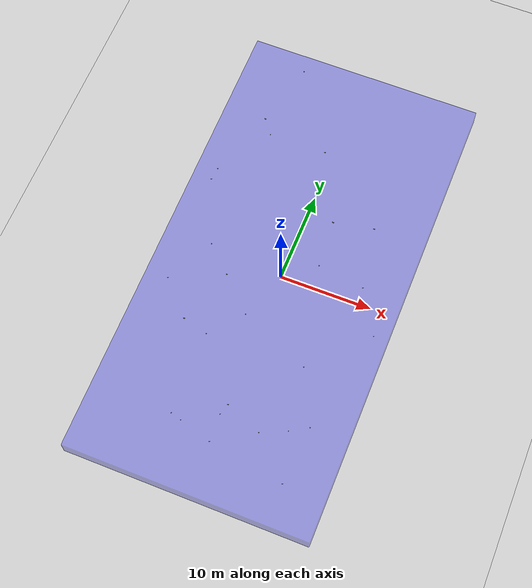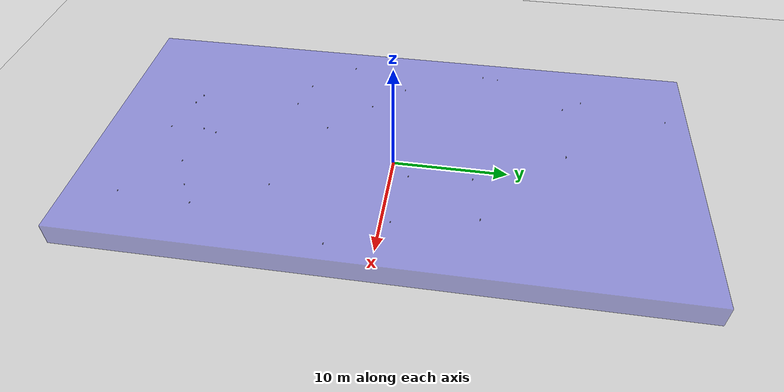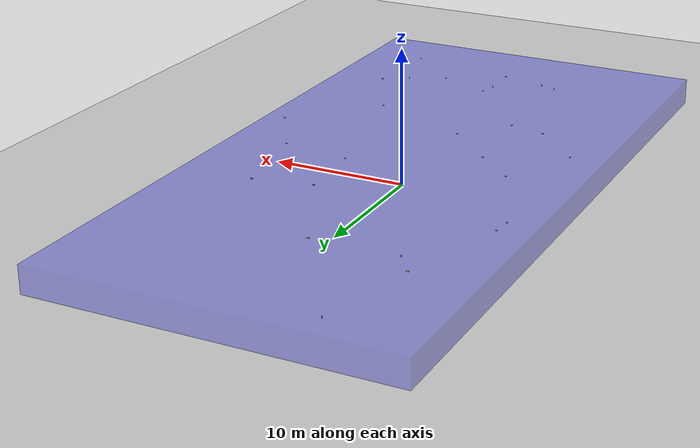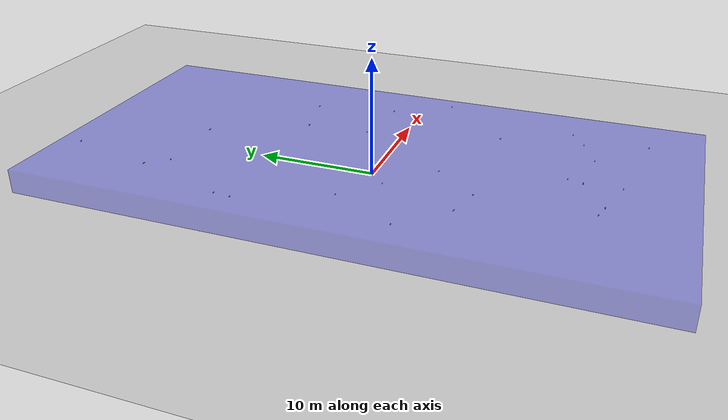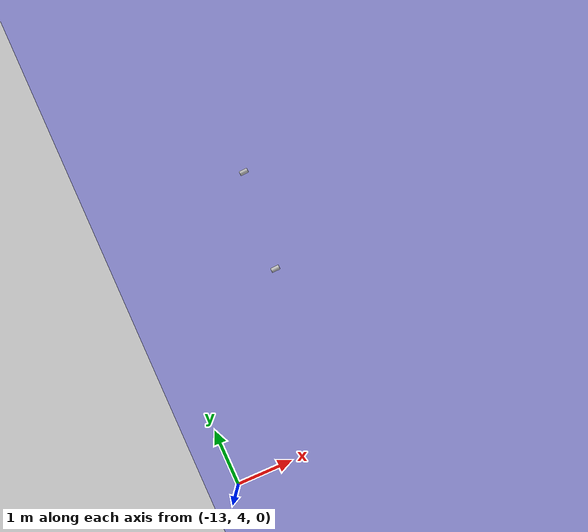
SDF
<sdf version="1.7">
 <world name="default">
  <light name="sun" type="directional">
   <pose>0 0 10 0 -0 0</pose>
   <diffuse>0.8 0.8 0.8 1</diffuse>
   <specular>0.2 0.2 0.2 1</specular>
   <attenuation>
    <range>1000</range>
    <constant>0.9</constant>
    <linear>0.01</linear>
    <quadratic>0.001</quadratic>
   </attenuation>
   <direction>-0.5 0.1 -0.9</direction>
   <spot><inner_angle>0</inner_angle><outer_angle>0</outer_angle><falloff>0</falloff></spot>
  </light>
  <model name="ground_plane">
   <static>1</static>
   <link name="link">
    <collision name="collision">
     <geometry><plane><normal>0 0 1</normal><size>200 200</size></plane></geometry>
     <surface>
      <contact><collide_bitmask>65535</collide_bitmask></contact>
      <friction><ode><mu>100</mu><mu2>50</mu2></ode></friction>
     </surface>
    </collision>
    <visual name="visual">
     <cast_shadows>0</cast_shadows>
     <geometry><plane><normal>0 0 1</normal><size>200 200</size></plane></geometry>
     <material>
      <script><uri>file://media/materials/scripts/gazebo.material</uri><name>Gazebo/Grey</name></script>
     </material>
    </visual>
   </link>
  </model>
  <model name="water">
   <static>1</static>
   <pose>0 0 1.02 3.1415 -0 3.1415</pose>
   <link name="link">
    <visual name="visual">
     <transparency>0.6</transparency>
     <cast_shadows>0</cast_shadows>
     <geometry><box><size>26 51 2</size></box></geometry>
     <material>
      <ambient>0.2 0.2 0.9 1</ambient>
      <diffuse>0.2 0.2 0.9 1</diffuse>
      <specular>0.1 0.1 0.3 1</specular>
      <emissive>0 0 0 1</emissive>
     </material>
    </visual>
    <collision name="collision">
     <geometry><box><size>26 51 2</size></box></geometry>
     <surface>
      <contact><ode><kp>100000</kp><kd>100</kd></ode></contact>
      <buoyancy><water_density>1000</water_density></buoyancy>
     </surface>
    </collision>
   </link>
  </model>
  <physics type="ode">
   <max_step_size>0.001</max_step_size>
   <real_time_update_rate>1000</real_time_update_rate>
   <real_time_factor>1</real_time_factor>
  </physics>
  <gravity>0 0 -9.8</gravity>
  <magnetic_field>6e-06 2.3e-05 -4.2e-05</magnetic_field>
  <atmosphere type="adiabatic"/>
  <scene><ambient>0.4 0.4 0.4 1</ambient><background>0.7 0.7 0.7 1</background><shadows>1</shadows></scene>
  <spherical_coordinates>
   <surface_model>EARTH_WGS84</surface_model>
   <latitude_deg>0</latitude_deg>
   <longitude_deg>0</longitude_deg>
   <elevation>0</elevation>
   <heading_deg>0</heading_deg>
  </spherical_coordinates>
  <model name="water_bottle_clone">
   <static>0</static>
   <link name="link">
    <collision name="collision">
     <geometry><cylinder><radius>0.035</radius><length>0.2</length></cylinder></geometry>
    </collision>
    <visual name="visual">
     <geometry><cylinder><radius>0.035</radius><length>0.2</length></cylinder></geometry>
     <material>
      <script>
       <uri>model://debris/water_bottle/materials/scripts</uri>
       <uri>model://debris/water_bottle/materials/textures</uri>
       <name>Debris/WaterBottle</name>
      </script>
     </material>
    </visual>
    <inertial>
     <mass>0.3</mass>
     <inertia><ixx>0.001</ixx><ixy>0</ixy><ixz>0</ixz><iyy>0.001</iyy><iyz>0</iyz><izz>0.001</izz></inertia>
    </inertial>
   </link>
   <pose>-7.12331 -8.83357 2.05417 1.57079 -0.849251 -1.64135</pose>
  </model>
  <model name="water_bottle_clone_0">
   <static>0</static>
   <link name="link">
    <collision name="collision">
     <geometry><cylinder><radius>0.035</radius><length>0.2</length></cylinder></geometry>
    </collision>
    <visual name="visual">
     <geometry><cylinder><radius>0.035</radius><length>0.2</length></cylinder></geometry>
     <material>
      <script>
       <uri>model://debris/water_bottle/materials/scripts</uri>
       <uri>model://debris/water_bottle/materials/textures</uri>
       <name>Debris/WaterBottle</name>
      </script>
     </material>
    </visual>
    <inertial>
     <mass>0.3</mass>
     <inertia><ixx>0.001</ixx><ixy>0</ixy><ixz>0</ixz><iyy>0.001</iyy><iyz>0</iyz><izz>0.001</izz></inertia>
    </inertial>
   </link>
   <pose>-8.2879 16.2115 2.05649 1.57079 -0.815715 -1.65596</pose>
  </model>
  <model name="water_bottle_clone_1">
   <static>0</static>
   <link name="link">
    <collision name="collision">
     <geometry><cylinder><radius>0.035</radius><length>0.2</length></cylinder></geometry>
    </collision>
    <visual name="visual">
     <geometry><cylinder><radius>0.035</radius><length>0.2</length></cylinder></geometry>
     <material>
      <script>
       <uri>model://debris/water_bottle/materials/scripts</uri>
       <uri>model://debris/water_bottle/materials/textures</uri>
       <name>Debris/WaterBottle</name>
      </script>
     </material>
    </visual>
    <inertial>
     <mass>0.3</mass>
     <inertia><ixx>0.001</ixx><ixy>0</ixy><ixz>0</ixz><iyy>0.001</iyy><iyz>0</iyz><izz>0.001</izz></inertia>
    </inertial>
   </link>
   <pose>7.44282 7.86851 2.05571 1.57078 -0.995325 -1.64201</pose>
  </model>
  <model name="pepsi_can_clone">
   <static>0</static>
   <link name="link">
    <collision name="collision">
     <geometry><cylinder><radius>0.033</radius><length>0.12</length></cylinder></geometry>
    </collision>
    <visual name="visual">
     <geometry><cylinder><radius>0.033</radius><length>0.12</length></cylinder></geometry>
     <material>
      <script>
       <uri>model://debris/pepsi_can/materials/scripts</uri>
       <uri>model://debris/pepsi_can/materials/textures</uri>
       <name>Debris/Pepsi</name>
      </script>
     </material>
    </visual>
    <inertial>
     <mass>0.3</mass>
     <inertia><ixx>0.001</ixx><ixy>0</ixy><ixz>0</ixz><iyy>0.001</iyy><iyz>0</iyz><izz>0.001</izz></inertia>
    </inertial>
   </link>
   <pose>-10.7283 8.51303 2.05377 1.57079 1.22067 1.61175</pose>
  </model>
  <model name="pepsi_can_clone_0">
   <static>0</static>
   <link name="link">
    <collision name="collision">
     <geometry><cylinder><radius>0.033</radius><length>0.12</length></cylinder></geometry>
    </collision>
    <visual name="visual">
     <geometry><cylinder><radius>0.033</radius><length>0.12</length></cylinder></geometry>
     <material>
      <script>
       <uri>model://debris/pepsi_can/materials/scripts</uri>
       <uri>model://debris/pepsi_can/materials/textures</uri>
       <name>Debris/Pepsi</name>
      </script>
     </material>
    </visual>
    <inertial>
     <mass>0.3</mass>
     <inertia><ixx>0.001</ixx><ixy>0</ixy><ixz>0</ixz><iyy>0.001</iyy><iyz>0</iyz><izz>0.001</izz></inertia>
    </inertial>
   </link>
   <pose>-10.8699 7.09847 2.05364 1.57078 1.24443 1.61177</pose>
  </model>
  <model name="pepsi_can_clone_1">
   <static>0</static>
   <link name="link">
    <collision name="collision">
     <geometry><cylinder><radius>0.033</radius><length>0.12</length></cylinder></geometry>
    </collision>
    <visual name="visual">
     <geometry><cylinder><radius>0.033</radius><length>0.12</length></cylinder></geometry>
     <material>
      <script>
       <uri>model://debris/pepsi_can/materials/scripts</uri>
       <uri>model://debris/pepsi_can/materials/textures</uri>
       <name>Debris/Pepsi</name>
      </script>
     </material>
    </visual>
    <inertial>
     <mass>0.3</mass>
     <inertia><ixx>0.001</ixx><ixy>0</ixy><ixz>0</ixz><iyy>0.001</iyy><iyz>0</iyz><izz>0.001</izz></inertia>
    </inertial>
   </link>
   <pose>-10.5257 -5.26918 2.0525 1.57078 1.27485 1.61177</pose>
  </model>
  <model name="pepsi_can_clone_2">
   <static>0</static>
   <link name="link">
    <collision name="collision">
     <geometry><cylinder><radius>0.033</radius><length>0.12</length></cylinder></geometry>
    </collision>
    <visual name="visual">
     <geometry><cylinder><radius>0.033</radius><length>0.12</length></cylinder></geometry>
     <material>
      <script>
       <uri>model://debris/pepsi_can/materials/scripts</uri>
       <uri>model://debris/pepsi_can/materials/textures</uri>
       <name>Debris/Pepsi</name>
      </script>
     </material>
    </visual>
    <inertial>
     <mass>0.3</mass>
     <inertia><ixx>0.001</ixx><ixy>0</ixy><ixz>0</ixz><iyy>0.001</iyy><iyz>0</iyz><izz>0.001</izz></inertia>
    </inertial>
   </link>
   <pose>-7.83719 -0.026124 2.05298 1.57078 1.27784 1.61178</pose>
  </model>
  <model name="coca_cola_can_clone">
   <static>0</static>
   <link name="link">
    <collision name="collision">
     <geometry><cylinder><radius>0.033</radius><length>0.12</length></cylinder></geometry>
    </collision>
    <visual name="visual">
     <geometry><cylinder><radius>0.033</radius><length>0.12</length></cylinder></geometry>
     <material>
      <script>
       <uri>model://debris/coca_cola_can/materials/scripts</uri>
       <uri>model://debris/coca_cola_can/materials/textures</uri>
       <name>Debris/CocaCola</name>
      </script>
     </material>
    </visual>
    <inertial>
     <mass>0.3</mass>
     <inertia><ixx>0.001</ixx><ixy>0</ixy><ixz>0</ixz><iyy>0.001</iyy><iyz>0</iyz><izz>0.001</izz></inertia>
    </inertial>
   </link>
   <pose>8.65227 1.05978 2.05308 1.5708 0.492515 1.56347</pose>
  </model>
  <model name="coca_cola_can_clone_0">
   <static>0</static>
   <link name="link">
    <collision name="collision">
     <geometry><cylinder><radius>0.033</radius><length>0.12</length></cylinder></geometry>
    </collision>
    <visual name="visual">
     <geometry><cylinder><radius>0.033</radius><length>0.12</length></cylinder></geometry>
     <material>
      <script>
       <uri>model://debris/coca_cola_can/materials/scripts</uri>
       <uri>model://debris/coca_cola_can/materials/textures</uri>
       <name>Debris/CocaCola</name>
      </script>
     </material>
    </visual>
    <inertial>
     <mass>0.3</mass>
     <inertia><ixx>0.001</ixx><ixy>0</ixy><ixz>0</ixz><iyy>0.001</iyy><iyz>0</iyz><izz>0.001</izz></inertia>
    </inertial>
   </link>
   <pose>6.10087 -9.28699 2.05213 1.5708 -0.072868 1.57</pose>
  </model>
  <model name="mirinda_can_clone">
   <static>0</static>
   <link name="link">
    <collision name="collision">
     <geometry><cylinder><radius>0.033</radius><length>0.12</length></cylinder></geometry>
    </collision>
    <visual name="visual">
     <geometry><cylinder><radius>0.033</radius><length>0.12</length></cylinder></geometry>
     <material>
      <script>
       <uri>model://debris/mirinda_can/materials/scripts</uri>
       <uri>model://debris/mirinda_can/materials/textures</uri>
       <name>Debris/Mirinda</name>
      </script>
     </material>
    </visual>
    <inertial>
     <mass>0.3</mass>
     <inertia><ixx>0.001</ixx><ixy>0</ixy><ixz>0</ixz><iyy>0.001</iyy><iyz>0</iyz><izz>0.001</izz></inertia>
    </inertial>
   </link>
   <pose>-3.13169 -18.8978 2.07825 -4.3e-05 0.000143 -2.06371</pose>
  </model>
  <model name="mirinda_can_clone_0">
   <static>0</static>
   <link name="link">
    <collision name="collision">
     <geometry><cylinder><radius>0.033</radius><length>0.12</length></cylinder></geometry>
    </collision>
    <visual name="visual">
     <geometry><cylinder><radius>0.033</radius><length>0.12</length></cylinder></geometry>
     <material>
      <script>
       <uri>model://debris/mirinda_can/materials/scripts</uri>
       <uri>model://debris/mirinda_can/materials/textures</uri>
       <name>Debris/Mirinda</name>
      </script>
     </material>
    </visual>
    <inertial>
     <mass>0.3</mass>
     <inertia><ixx>0.001</ixx><ixy>0</ixy><ixz>0</ixz><iyy>0.001</iyy><iyz>0</iyz><izz>0.001</izz></inertia>
    </inertial>
   </link>
   <pose>7.14858 -16.0655 2.07851 -1.4e-05 5.7e-05 -2.46805</pose>
  </model>
  <model name="coca_cola_can_clone_1">
   <static>0</static>
   <link name="link">
    <collision name="collision">
     <geometry><cylinder><radius>0.033</radius><length>0.12</length></cylinder></geometry>
    </collision>
    <visual name="visual">
     <geometry><cylinder><radius>0.033</radius><length>0.12</length></cylinder></geometry>
     <material>
      <script>
       <uri>model://debris/coca_cola_can/materials/scripts</uri>
       <uri>model://debris/coca_cola_can/materials/textures</uri>
       <name>Debris/CocaCola</name>
      </script>
     </material>
    </visual>
    <inertial>
     <mass>0.3</mass>
     <inertia><ixx>0.001</ixx><ixy>0</ixy><ixz>0</ixz><iyy>0.001</iyy><iyz>0</iyz><izz>0.001</izz></inertia>
    </inertial>
   </link>
   <pose>0.579845 -15.7056 2.05153 -1.5708 -1.20095 -1.57534</pose>
  </model>
  <model name="coca_cola_can_clone_2">
   <static>0</static>
   <link name="link">
    <collision name="collision">
     <geometry><cylinder><radius>0.033</radius><length>0.12</length></cylinder></geometry>
    </collision>
    <visual name="visual">
     <geometry><cylinder><radius>0.033</radius><length>0.12</length></cylinder></geometry>
     <material>
      <script>
       <uri>model://debris/coca_cola_can/materials/scripts</uri>
       <uri>model://debris/coca_cola_can/materials/textures</uri>
       <name>Debris/CocaCola</name>
      </script>
     </material>
    </visual>
    <inertial>
     <mass>0.3</mass>
     <inertia><ixx>0.001</ixx><ixy>0</ixy><ixz>0</ixz><iyy>0.001</iyy><iyz>0</iyz><izz>0.001</izz></inertia>
    </inertial>
   </link>
   <pose>4.48135 -17.273 2.05138 -1.5708 -1.08156 -1.57472</pose>
  </model>
  <model name="water_bottle_clone_2">
   <static>0</static>
   <link name="link">
    <collision name="collision">
     <geometry><cylinder><radius>0.035</radius><length>0.2</length></cylinder></geometry>
    </collision>
    <visual name="visual">
     <geometry><cylinder><radius>0.035</radius><length>0.2</length></cylinder></geometry>
     <material>
      <script>
       <uri>model://debris/water_bottle/materials/scripts</uri>
       <uri>model://debris/water_bottle/materials/textures</uri>
       <name>Debris/WaterBottle</name>
      </script>
     </material>
    </visual>
    <inertial>
     <mass>0.3</mass>
     <inertia><ixx>0.001</ixx><ixy>0</ixy><ixz>0</ixz><iyy>0.001</iyy><iyz>0</iyz><izz>0.001</izz></inertia>
    </inertial>
   </link>
   <pose>-0.707277 14.6511 2.05634 1.57079 0.849558 -1.59332</pose>
  </model>
  <model name="water_bottle_clone_3">
   <static>0</static>
   <link name="link">
    <collision name="collision">
     <geometry><cylinder><radius>0.035</radius><length>0.2</length></cylinder></geometry>
    </collision>
    <visual name="visual">
     <geometry><cylinder><radius>0.035</radius><length>0.2</length></cylinder></geometry>
     <material>
      <script>
       <uri>model://debris/water_bottle/materials/scripts</uri>
       <uri>model://debris/water_bottle/materials/textures</uri>
       <name>Debris/WaterBottle</name>
      </script>
     </material>
    </visual>
    <inertial>
     <mass>0.3</mass>
     <inertia><ixx>0.001</ixx><ixy>0</ixy><ixz>0</ixz><iyy>0.001</iyy><iyz>0</iyz><izz>0.001</izz></inertia>
    </inertial>
   </link>
   <pose>3.12467 7.00728 2.05564 1.5708 0.867823 -1.57355</pose>
  </model>
  <model name="pepsi_can_clone_3">
   <static>0</static>
   <link name="link">
    <collision name="collision">
     <geometry><cylinder><radius>0.033</radius><length>0.12</length></cylinder></geometry>
    </collision>
    <visual name="visual">
     <geometry><cylinder><radius>0.033</radius><length>0.12</length></cylinder></geometry>
     <material>
      <script>
       <uri>model://debris/pepsi_can/materials/scripts</uri>
       <uri>model://debris/pepsi_can/materials/textures</uri>
       <name>Debris/Pepsi</name>
      </script>
     </material>
    </visual>
    <inertial>
     <mass>0.3</mass>
     <inertia><ixx>0.001</ixx><ixy>0</ixy><ixz>0</ixz><iyy>0.001</iyy><iyz>0</iyz><izz>0.001</izz></inertia>
    </inertial>
   </link>
   <pose>8.99513 -14.9451 2.0516 1.57078 1.35976 1.61173</pose>
  </model>
  <model name="pepsi_can_clone_4">
   <static>0</static>
   <link name="link">
    <collision name="collision">
     <geometry><cylinder><radius>0.033</radius><length>0.12</length></cylinder></geometry>
    </collision>
    <visual name="visual">
     <geometry><cylinder><radius>0.033</radius><length>0.12</length></cylinder></geometry>
     <material>
      <script>
       <uri>model://debris/pepsi_can/materials/scripts</uri>
       <uri>model://debris/pepsi_can/materials/textures</uri>
       <name>Debris/Pepsi</name>
      </script>
     </material>
    </visual>
    <inertial>
     <mass>0.3</mass>
     <inertia><ixx>0.001</ixx><ixy>0</ixy><ixz>0</ixz><iyy>0.001</iyy><iyz>0</iyz><izz>0.001</izz></inertia>
    </inertial>
   </link>
   <pose>11.5026 -3.58769 2.05265 1.57078 1.36243 1.61181</pose>
  </model>
  <model name="mirinda_can_clone_1">
   <static>0</static>
   <link name="link">
    <collision name="collision">
     <geometry><cylinder><radius>0.033</radius><length>0.12</length></cylinder></geometry>
    </collision>
    <visual name="visual">
     <geometry><cylinder><radius>0.033</radius><length>0.12</length></cylinder></geometry>
     <material>
      <script>
       <uri>model://debris/mirinda_can/materials/scripts</uri>
       <uri>model://debris/mirinda_can/materials/textures</uri>
       <name>Debris/Mirinda</name>
      </script>
     </material>
    </visual>
    <inertial>
     <mass>0.3</mass>
     <inertia><ixx>0.001</ixx><ixy>0</ixy><ixz>0</ixz><iyy>0.001</iyy><iyz>0</iyz><izz>0.001</izz></inertia>
    </inertial>
   </link>
   <pose>-7.04812 14.5301 2.08134 -8.9e-05 7.7e-05 -2.27373</pose>
  </model>
  <model name="mirinda_can_clone_2">
   <static>0</static>
   <link name="link">
    <collision name="collision">
     <geometry><cylinder><radius>0.033</radius><length>0.12</length></cylinder></geometry>
    </collision>
    <visual name="visual">
     <geometry><cylinder><radius>0.033</radius><length>0.12</length></cylinder></geometry>
     <material>
      <script>
       <uri>model://debris/mirinda_can/materials/scripts</uri>
       <uri>model://debris/mirinda_can/materials/textures</uri>
       <name>Debris/Mirinda</name>
      </script>
     </material>
    </visual>
    <inertial>
     <mass>0.3</mass>
     <inertia><ixx>0.001</ixx><ixy>0</ixy><ixz>0</ixz><iyy>0.001</iyy><iyz>0</iyz><izz>0.001</izz></inertia>
    </inertial>
   </link>
   <pose>-6.58143 23.5461 2.04867 0.13621 0.261221 -1.67817</pose>
  </model>
  <model name="mirinda_can_clone_3">
   <static>0</static>
   <link name="link">
    <collision name="collision">
     <geometry><cylinder><radius>0.033</radius><length>0.12</length></cylinder></geometry>
    </collision>
    <visual name="visual">
     <geometry><cylinder><radius>0.033</radius><length>0.12</length></cylinder></geometry>
     <material>
      <script>
       <uri>model://debris/mirinda_can/materials/scripts</uri>
       <uri>model://debris/mirinda_can/materials/textures</uri>
       <name>Debris/Mirinda</name>
      </script>
     </material>
    </visual>
    <inertial>
     <mass>0.3</mass>
     <inertia><ixx>0.001</ixx><ixy>0</ixy><ixz>0</ixz><iyy>0.001</iyy><iyz>0</iyz><izz>0.001</izz></inertia>
    </inertial>
   </link>
   <pose>0.239566 -16.9178 2.05349 0.12013 0.125696 0.801956</pose>
  </model>
  <model name="mirinda_can_clone_4">
   <static>0</static>
   <link name="link">
    <collision name="collision">
     <geometry><cylinder><radius>0.033</radius><length>0.12</length></cylinder></geometry>
    </collision>
    <visual name="visual">
     <geometry><cylinder><radius>0.033</radius><length>0.12</length></cylinder></geometry>
     <material>
      <script>
       <uri>model://debris/mirinda_can/materials/scripts</uri>
       <uri>model://debris/mirinda_can/materials/textures</uri>
       <name>Debris/Mirinda</name>
      </script>
     </material>
    </visual>
    <inertial>
     <mass>0.3</mass>
     <inertia><ixx>0.001</ixx><ixy>0</ixy><ixz>0</ixz><iyy>0.001</iyy><iyz>0</iyz><izz>0.001</izz></inertia>
    </inertial>
   </link>
   <pose>-4.29012 -18.5662 2.05349 0.12013 0.125696 0.801956</pose>
  </model>
  <model name="coca_cola_can_clone_3">
   <static>0</static>
   <link name="link">
    <collision name="collision">
     <geometry><cylinder><radius>0.033</radius><length>0.12</length></cylinder></geometry>
    </collision>
    <visual name="visual">
     <geometry><cylinder><radius>0.033</radius><length>0.12</length></cylinder></geometry>
     <material>
      <script>
       <uri>model://debris/coca_cola_can/materials/scripts</uri>
       <uri>model://debris/coca_cola_can/materials/textures</uri>
       <name>Debris/CocaCola</name>
      </script>
     </material>
    </visual>
    <inertial>
     <mass>0.3</mass>
     <inertia><ixx>0.001</ixx><ixy>0</ixy><ixz>0</ixz><iyy>0.001</iyy><iyz>0</iyz><izz>0.001</izz></inertia>
    </inertial>
   </link>
   <pose>-4.99337 -2.67372 2.03282 -1.61879 1.39101 -1.622</pose>
  </model>
  <model name="coca_cola_can_clone_4">
   <static>0</static>
   <link name="link">
    <collision name="collision">
     <geometry><cylinder><radius>0.033</radius><length>0.12</length></cylinder></geometry>
    </collision>
    <visual name="visual">
     <geometry><cylinder><radius>0.033</radius><length>0.12</length></cylinder></geometry>
     <material>
      <script>
       <uri>model://debris/coca_cola_can/materials/scripts</uri>
       <uri>model://debris/coca_cola_can/materials/textures</uri>
       <name>Debris/CocaCola</name>
      </script>
     </material>
    </visual>
    <inertial>
     <mass>0.3</mass>
     <inertia><ixx>0.001</ixx><ixy>0</ixy><ixz>0</ixz><iyy>0.001</iyy><iyz>0</iyz><izz>0.001</izz></inertia>
    </inertial>
   </link>
   <pose>3.53666 1.76588 2.03282 -1.61879 1.39101 -1.622</pose>
  </model>
  <model name="coca_cola_can_clone_5">
   <static>0</static>
   <link name="link">
    <collision name="collision">
     <geometry><cylinder><radius>0.033</radius><length>0.12</length></cylinder></geometry>
    </collision>
    <visual name="visual">
     <geometry><cylinder><radius>0.033</radius><length>0.12</length></cylinder></geometry>
     <material>
      <script>
       <uri>model://debris/coca_cola_can/materials/scripts</uri>
       <uri>model://debris/coca_cola_can/materials/textures</uri>
       <name>Debris/CocaCola</name>
      </script>
     </material>
    </visual>
    <inertial>
     <mass>0.3</mass>
     <inertia><ixx>0.001</ixx><ixy>0</ixy><ixz>0</ixz><iyy>0.001</iyy><iyz>0</iyz><izz>0.001</izz></inertia>
    </inertial>
   </link>
   <pose>-4.37845 -9.55972 2.03282 -1.61879 1.39101 -1.622</pose>
  </model>
  <model name="coca_cola_can_clone_6">
   <static>0</static>
   <link name="link">
    <collision name="collision">
     <geometry><cylinder><radius>0.033</radius><length>0.12</length></cylinder></geometry>
    </collision>
    <visual name="visual">
     <geometry><cylinder><radius>0.033</radius><length>0.12</length></cylinder></geometry>
     <material>
      <script>
       <uri>model://debris/coca_cola_can/materials/scripts</uri>
       <uri>model://debris/coca_cola_can/materials/textures</uri>
       <name>Debris/CocaCola</name>
      </script>
     </material>
    </visual>
    <inertial>
     <mass>0.3</mass>
     <inertia><ixx>0.001</ixx><ixy>0</ixy><ixz>0</ixz><iyy>0.001</iyy><iyz>0</iyz><izz>0.001</izz></inertia>
    </inertial>
   </link>
   <pose>-1.49068 -6.12088 2.03282 -1.61879 1.39101 -1.622</pose>
  </model>
  <model name="coca_cola_can_clone_7">
   <static>0</static>
   <link name="link">
    <collision name="collision">
     <geometry><cylinder><radius>0.033</radius><length>0.12</length></cylinder></geometry>
    </collision>
    <visual name="visual">
     <geometry><cylinder><radius>0.033</radius><length>0.12</length></cylinder></geometry>
     <material>
      <script>
       <uri>model://debris/coca_cola_can/materials/scripts</uri>
       <uri>model://debris/coca_cola_can/materials/textures</uri>
       <name>Debris/CocaCola</name>
      </script>
     </material>
    </visual>
    <inertial>
     <mass>0.3</mass>
     <inertia><ixx>0.001</ixx><ixy>0</ixy><ixz>0</ixz><iyy>0.001</iyy><iyz>0</iyz><izz>0.001</izz></inertia>
    </inertial>
   </link>
   <pose>8.54396 -21.1659 2.03282 -1.61879 1.39101 -1.622</pose>
  </model>
  <model name="coca_cola_can_clone_8">
   <static>0</static>
   <link name="link">
    <collision name="collision">
     <geometry><cylinder><radius>0.033</radius><length>0.12</length></cylinder></geometry>
    </collision>
    <visual name="visual">
     <geometry><cylinder><radius>0.033</radius><length>0.12</length></cylinder></geometry>
     <material>
      <script>
       <uri>model://debris/coca_cola_can/materials/scripts</uri>
       <uri>model://debris/coca_cola_can/materials/textures</uri>
       <name>Debris/CocaCola</name>
      </script>
     </material>
    </visual>
    <inertial>
     <mass>0.3</mass>
     <inertia><ixx>0.001</ixx><ixy>0</ixy><ixz>0</ixz><iyy>0.001</iyy><iyz>0</iyz><izz>0.001</izz></inertia>
    </inertial>
   </link>
   <pose>0.351983 -19.8587 2.03282 -1.61879 1.39101 -1.622</pose>
  </model>
 </world>
</sdf>
